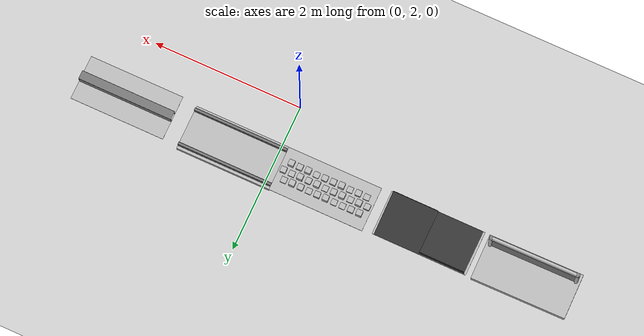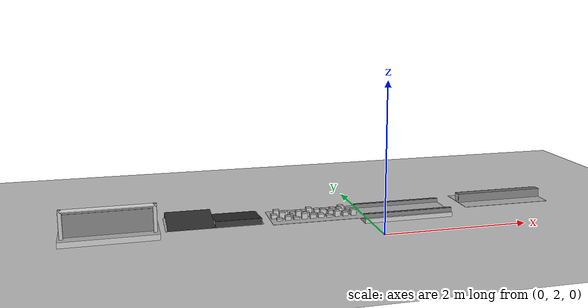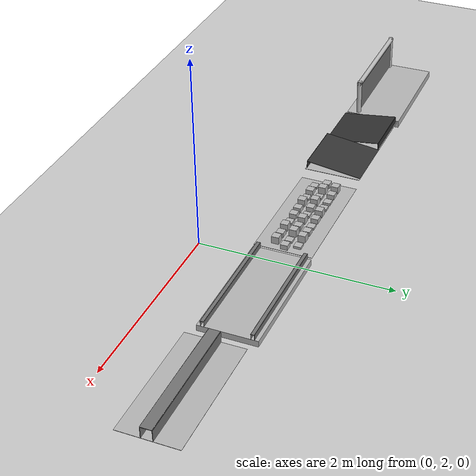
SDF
<sdf version="1.5">
 <world name="default">
  <model name="ground_plane">
   <static>1</static>
   <link name="link">
    <collision name="collision">
     <geometry><plane><normal>0 0 1</normal><size>100 100</size></plane></geometry>
     <surface><friction><ode><mu>100</mu><mu2>50</mu2></ode></friction></surface>
    </collision>
    <visual name="visual">
     <cast_shadows>0</cast_shadows>
     <geometry><plane><normal>0 0 1</normal><size>100 100</size></plane></geometry>
     <material>
      <script><uri>file://media/materials/scripts/gazebo.material</uri><name>Gazebo/Grey</name></script>
     </material>
    </visual>
   </link>
  </model>
  <model name="frc2016_rockwall">
   <static>1</static>
   <link name="link">
    <inertial>
     <mass>10</mass>
     <pose>0 0 0.08974 0 -0 0</pose>
     <inertia><ixx>0.327091</ixx><ixy>0</ixy><ixz>0</ixz><iyy>1.37417</iyy><iyz>0</iyz><izz>1.64109</izz></inertia>
    </inertial>
    <visual name="platform">
     <pose>0 0 0.06432 0 -0 0</pose>
     <geometry><box><size>1.27 0.5969 0.003175</size></box></geometry>
    </visual>
    <collision name="platform">
     <pose>0 0 0.06432 0 -0 0</pose>
     <geometry><box><size>1.27 0.5969 0.003175</size></box></geometry>
    </collision>
    <visual name="up1">
     <pose>0 0.05166 0.12537 0 -0 0</pose>
     <geometry><box><size>1.27 0.00462 0.11892</size></box></geometry>
     <material><ambient>0.46 0.46 0.46 1</ambient><diffuse>0.46 0.46 0.46 1</diffuse></material>
    </visual>
    <collision name="up1">
     <pose>0 0.05166 0.12537 0 -0 0</pose>
     <geometry><box><size>1.27 0.00462 0.11892</size></box></geometry>
    </collision>
    <visual name="up2">
     <pose>0 -0.05801 0.12537 0 -0 0</pose>
     <geometry><box><size>1.27 0.00462 0.11892</size></box></geometry>
     <material><ambient>0.46 0.46 0.46 1</ambient><diffuse>0.46 0.46 0.46 1</diffuse></material>
    </visual>
    <collision name="up2">
     <pose>0 -0.05801 0.12537 0 -0 0</pose>
     <geometry><box><size>1.27 0.00462 0.11892</size></box></geometry>
    </collision>
    <visual name="top">
     <pose>0 -0.00249 0.18252 0 -0 0</pose>
     <geometry><box><size>1.27 0.1143 0.00462</size></box></geometry>
     <material><ambient>0.46 0.46 0.46 1</ambient><diffuse>0.46 0.46 0.46 1</diffuse></material>
    </visual>
    <collision name="top">
     <pose>0 -0.00249 0.18252 0 -0 0</pose>
     <geometry><box><size>1.27 0.1143 0.00462</size></box></geometry>
    </collision>
   </link>
   <pose>2.00868 2.81309 0.054755 0 -0 0</pose>
  </model>
  <model name="frc2016_moat">
   <static>1</static>
   <link name="link">
    <inertial>
     <mass>10</mass>
     <pose>0 0 0.06738 0 -0 0</pose>
     <inertia><ixx>0.312195</ixx><ixy>0</ixy><ixz>0</ixz><iyy>1.35927</iyy><iyz>0</iyz><izz>1.64109</izz></inertia>
    </inertial>
    <visual name="platform">
     <pose>0 0 0.0381 0 -0 0</pose>
     <geometry><box><size>1.27 0.5969 0.0762</size></box></geometry>
    </visual>
    <collision name="platform">
     <pose>0 0 0.0381 0 -0 0</pose>
     <geometry><box><size>1.27 0.5969 0.0762</size></box></geometry>
    </collision>
    <visual name="tube1_side1">
     <pose>0 -0.25876 0.10301 0 -0 0</pose>
     <geometry><box><size>1.27 0.003175 0.0635</size></box></geometry>
     <material><ambient>0.46 0.46 0.46 1</ambient><diffuse>0.46 0.46 0.46 1</diffuse></material>
    </visual>
    <collision name="tube1_side1">
     <pose>0 -0.25876 0.10301 0 -0 0</pose>
     <geometry><box><size>1.27 0.003175 0.0635</size></box></geometry>
    </collision>
    <visual name="tube1_side2">
     <pose>0 -0.22384 0.10301 0 -0 0</pose>
     <geometry><box><size>1.27 0.003175 0.0635</size></box></geometry>
     <material><ambient>0.46 0.46 0.46 1</ambient><diffuse>0.46 0.46 0.46 1</diffuse></material>
    </visual>
    <collision name="tube1_side2">
     <pose>0 -0.22384 0.10301 0 -0 0</pose>
     <geometry><box><size>1.27 0.003175 0.0635</size></box></geometry>
    </collision>
    <visual name="tube1_top">
     <pose>0 -0.2413 0.13317 0 -0 0</pose>
     <geometry><box><size>1.27 0.0381 0.003175</size></box></geometry>
     <material><ambient>0.46 0.46 0.46 1</ambient><diffuse>0.46 0.46 0.46 1</diffuse></material>
    </visual>
    <collision name="tube1_top">
     <pose>0 -0.2413 0.13317 0 -0 0</pose>
     <geometry><box><size>1.27 0.0381 0.003175</size></box></geometry>
    </collision>
    <visual name="tube2_side1">
     <pose>0 0.22384 0.10301 0 -0 0</pose>
     <geometry><box><size>1.27 0.003175 0.0635</size></box></geometry>
     <material><ambient>0.46 0.46 0.46 1</ambient><diffuse>0.46 0.46 0.46 1</diffuse></material>
    </visual>
    <collision name="tube2_side1">
     <pose>0 0.22384 0.10301 0 -0 0</pose>
     <geometry><box><size>1.27 0.003175 0.0635</size></box></geometry>
    </collision>
    <visual name="tube2_side2">
     <pose>0 0.25876 0.10301 0 -0 0</pose>
     <geometry><box><size>1.27 0.003175 0.0635</size></box></geometry>
     <material><ambient>0.46 0.46 0.46 1</ambient><diffuse>0.46 0.46 0.46 1</diffuse></material>
    </visual>
    <collision name="tube2_side2">
     <pose>0 0.25876 0.10301 0 -0 0</pose>
     <geometry><box><size>1.27 0.003175 0.0635</size></box></geometry>
    </collision>
    <visual name="tube2_top">
     <pose>0 0.2413 0.13317 0 -0 0</pose>
     <geometry><box><size>1.27 0.0381 0.003175</size></box></geometry>
     <material><ambient>0.46 0.46 0.46 1</ambient><diffuse>0.46 0.46 0.46 1</diffuse></material>
    </visual>
    <collision name="tube2_top">
     <pose>0 0.2413 0.13317 0 -0 0</pose>
     <geometry><box><size>1.27 0.0381 0.003175</size></box></geometry>
    </collision>
   </link>
   <pose>0.544454 2.83217 -0.019486 0 -0 0</pose>
  </model>
  <model name="frc2016_roughterrain">
   <static>1</static>
   <link name="link">
    <visual name="platform">
     <pose>0 0 0.08269 0 -0 0</pose>
     <geometry><box><size>1.27 0.5969 0.003175</size></box></geometry>
    </visual>
    <collision name="platform">
     <pose>0 0 0.08269 0 -0 0</pose>
     <geometry><box><size>1.27 0.5969 0.003175</size></box></geometry>
    </collision>
    <visual name="row1_block1_sm">
     <pose>0.51435 0.1143 0.09698 0 -0 0</pose>
     <geometry><box><size>0.0762 0.0762 0.0254</size></box></geometry>
    </visual>
    <collision name="row1_block1_sm">
     <pose>0.51435 0.1143 0.09698 0 -0 0</pose>
     <geometry><box><size>0.0762 0.0762 0.0254</size></box></geometry>
    </collision>
    <visual name="row1_block2_lg">
     <pose>0.40005 0.1143 0.12238 0 -0 0</pose>
     <geometry><box><size>0.0762 0.0762 0.0762</size></box></geometry>
    </visual>
    <collision name="row1_block2_lg">
     <pose>0.40005 0.1143 0.12238 0 -0 0</pose>
     <geometry><box><size>0.0762 0.0762 0.0762</size></box></geometry>
    </collision>
    <visual name="row1_block3_md">
     <pose>0.28575 0.1143 0.10968 0 -0 0</pose>
     <geometry><box><size>0.0762 0.0762 0.0508</size></box></geometry>
    </visual>
    <collision name="row1_block3_md">
     <pose>0.28575 0.1143 0.10968 0 -0 0</pose>
     <geometry><box><size>0.0762 0.0762 0.0508</size></box></geometry>
    </collision>
    <visual name="row1_block4_sm">
     <pose>0.17145 0.1143 0.09698 0 -0 0</pose>
     <geometry><box><size>0.0762 0.0762 0.0254</size></box></geometry>
    </visual>
    <collision name="row1_block4_sm">
     <pose>0.17145 0.1143 0.09698 0 -0 0</pose>
     <geometry><box><size>0.0762 0.0762 0.0254</size></box></geometry>
    </collision>
    <visual name="row1_block5_md">
     <pose>0.05715 0.1143 0.10968 0 -0 0</pose>
     <geometry><box><size>0.0762 0.0762 0.0508</size></box></geometry>
    </visual>
    <collision name="row1_block5_md">
     <pose>0.05715 0.1143 0.10968 0 -0 0</pose>
     <geometry><box><size>0.0762 0.0762 0.0508</size></box></geometry>
    </collision>
    <visual name="row1_block6_lg">
     <pose>-0.05715 0.1143 0.12238 0 -0 0</pose>
     <geometry><box><size>0.0762 0.0762 0.0762</size></box></geometry>
    </visual>
    <collision name="row1_block6_lg">
     <pose>-0.05715 0.1143 0.12238 0 -0 0</pose>
     <geometry><box><size>0.0762 0.0762 0.0762</size></box></geometry>
    </collision>
    <visual name="row1_block7_sm">
     <pose>-0.17145 0.1143 0.09698 0 -0 0</pose>
     <geometry><box><size>0.0762 0.0762 0.0254</size></box></geometry>
    </visual>
    <collision name="row1_block7_sm">
     <pose>-0.17145 0.1143 0.09698 0 -0 0</pose>
     <geometry><box><size>0.0762 0.0762 0.0254</size></box></geometry>
    </collision>
    <visual name="row1_block8_sm">
     <pose>-0.28575 0.1143 0.09698 0 -0 0</pose>
     <geometry><box><size>0.0762 0.0762 0.0254</size></box></geometry>
    </visual>
    <collision name="row1_block8_sm">
     <pose>-0.28575 0.1143 0.09698 0 -0 0</pose>
     <geometry><box><size>0.0762 0.0762 0.0254</size></box></geometry>
    </collision>
    <visual name="row1_block9_md">
     <pose>-0.40005 0.1143 0.10968 0 -0 0</pose>
     <geometry><box><size>0.0762 0.0762 0.0508</size></box></geometry>
    </visual>
    <collision name="row1_block9_md">
     <pose>-0.40005 0.1143 0.10968 0 -0 0</pose>
     <geometry><box><size>0.0762 0.0762 0.0508</size></box></geometry>
    </collision>
    <visual name="row1_block10_lg">
     <pose>-0.51435 0.1143 0.12238 0 -0 0</pose>
     <geometry><box><size>0.0762 0.0762 0.0762</size></box></geometry>
    </visual>
    <collision name="row1_block10_lg">
     <pose>-0.51435 0.1143 0.12238 0 -0 0</pose>
     <geometry><box><size>0.0762 0.0762 0.0762</size></box></geometry>
    </collision>
    <visual name="row2_block1_md">
     <pose>0.5715 0 0.10968 0 -0 0</pose>
     <geometry><box><size>0.0762 0.0762 0.0508</size></box></geometry>
    </visual>
    <collision name="row2_block1_md">
     <pose>0.5715 0 0.10968 0 -0 0</pose>
     <geometry><box><size>0.0762 0.0762 0.0508</size></box></geometry>
    </collision>
    <visual name="row2_block2_sm">
     <pose>0.4572 0 0.09698 0 -0 0</pose>
     <geometry><box><size>0.0762 0.0762 0.0254</size></box></geometry>
    </visual>
    <collision name="row2_block2_sm">
     <pose>0.4572 0 0.09698 0 -0 0</pose>
     <geometry><box><size>0.0762 0.0762 0.0254</size></box></geometry>
    </collision>
    <visual name="row2_block3_lg">
     <pose>0.3429 0 0.12238 0 -0 0</pose>
     <geometry><box><size>0.0762 0.0762 0.0762</size></box></geometry>
    </visual>
    <collision name="row2_block3_lg">
     <pose>0.3429 0 0.12238 0 -0 0</pose>
     <geometry><box><size>0.0762 0.0762 0.0762</size></box></geometry>
    </collision>
    <visual name="row2_block4_md">
     <pose>0.2286 0 0.10968 0 -0 0</pose>
     <geometry><box><size>0.0762 0.0762 0.0508</size></box></geometry>
    </visual>
    <collision name="row2_block4_md">
     <pose>0.2286 0 0.10968 0 -0 0</pose>
     <geometry><box><size>0.0762 0.0762 0.0508</size></box></geometry>
    </collision>
    <visual name="row2_block5_lg">
     <pose>0.1143 0 0.12238 0 -0 0</pose>
     <geometry><box><size>0.0762 0.0762 0.0762</size></box></geometry>
    </visual>
    <collision name="row2_block5_lg">
     <pose>0.1143 0 0.12238 0 -0 0</pose>
     <geometry><box><size>0.0762 0.0762 0.0762</size></box></geometry>
    </collision>
    <visual name="row2_block6_sm">
     <pose>0 0 0.09698 0 -0 0</pose>
     <geometry><box><size>0.0762 0.0762 0.0254</size></box></geometry>
    </visual>
    <collision name="row2_block6_sm">
     <pose>0 0 0.09698 0 -0 0</pose>
     <geometry><box><size>0.0762 0.0762 0.0254</size></box></geometry>
    </collision>
    <visual name="row2_block7_md">
     <pose>-0.1143 0 0.10968 0 -0 0</pose>
     <geometry><box><size>0.0762 0.0762 0.0508</size></box></geometry>
    </visual>
    <collision name="row2_block7_md">
     <pose>-0.1143 0 0.10968 0 -0 0</pose>
     <geometry><box><size>0.0762 0.0762 0.0508</size></box></geometry>
    </collision>
    <visual name="row2_block8_lg">
     <pose>-0.2286 0 0.12238 0 -0 0</pose>
     <geometry><box><size>0.0762 0.0762 0.0762</size></box></geometry>
    </visual>
    <collision name="row2_block8_lg">
     <pose>-0.2286 0 0.12238 0 -0 0</pose>
     <geometry><box><size>0.0762 0.0762 0.0762</size></box></geometry>
    </collision>
    <visual name="row2_block9_sm">
     <pose>-0.3429 0 0.09698 0 -0 0</pose>
     <geometry><box><size>0.0762 0.0762 0.0254</size></box></geometry>
    </visual>
    <collision name="row2_block9_sm">
     <pose>-0.3429 0 0.09698 0 -0 0</pose>
     <geometry><box><size>0.0762 0.0762 0.0254</size></box></geometry>
    </collision>
    <visual name="row2_block10_lg">
     <pose>-0.4572 0 0.12238 0 -0 0</pose>
     <geometry><box><size>0.0762 0.0762 0.0762</size></box></geometry>
    </visual>
    <collision name="row2_block10_lg">
     <pose>-0.4572 0 0.12238 0 -0 0</pose>
     <geometry><box><size>0.0762 0.0762 0.0762</size></box></geometry>
    </collision>
    <visual name="row2_block11_md">
     <pose>-0.5715 0 0.10968 0 -0 0</pose>
     <geometry><box><size>0.0762 0.0762 0.0508</size></box></geometry>
    </visual>
    <collision name="row2_block11_md">
     <pose>-0.5715 0 0.10968 0 -0 0</pose>
     <geometry><box><size>0.0762 0.0762 0.0508</size></box></geometry>
    </collision>
    <visual name="row3_block1_lg">
     <pose>0.51435 -0.1143 0.12238 0 -0 0</pose>
     <geometry><box><size>0.0762 0.0762 0.0762</size></box></geometry>
    </visual>
    <collision name="row3_block1_lg">
     <pose>0.51435 -0.1143 0.12238 0 -0 0</pose>
     <geometry><box><size>0.0762 0.0762 0.0762</size></box></geometry>
    </collision>
    <visual name="row3_block2_md">
     <pose>0.40005 -0.1143 0.10968 0 -0 0</pose>
     <geometry><box><size>0.0762 0.0762 0.0508</size></box></geometry>
    </visual>
    <collision name="row3_block2_md">
     <pose>0.40005 -0.1143 0.10968 0 -0 0</pose>
     <geometry><box><size>0.0762 0.0762 0.0508</size></box></geometry>
    </collision>
    <visual name="row3_block3_lg">
     <pose>0.28575 -0.1143 0.12238 0 -0 0</pose>
     <geometry><box><size>0.0762 0.0762 0.0762</size></box></geometry>
    </visual>
    <collision name="row3_block3_lg">
     <pose>0.28575 -0.1143 0.12238 0 -0 0</pose>
     <geometry><box><size>0.0762 0.0762 0.0762</size></box></geometry>
    </collision>
    <visual name="row3_block4_sm">
     <pose>0.17145 -0.1143 0.09698 0 -0 0</pose>
     <geometry><box><size>0.0762 0.0762 0.0254</size></box></geometry>
    </visual>
    <collision name="row3_block4_sm">
     <pose>0.17145 -0.1143 0.09698 0 -0 0</pose>
     <geometry><box><size>0.0762 0.0762 0.0254</size></box></geometry>
    </collision>
    <visual name="row3_block5_md">
     <pose>0.05715 -0.1143 0.10968 0 -0 0</pose>
     <geometry><box><size>0.0762 0.0762 0.0508</size></box></geometry>
    </visual>
    <collision name="row3_block5_md">
     <pose>0.05715 -0.1143 0.10968 0 -0 0</pose>
     <geometry><box><size>0.0762 0.0762 0.0508</size></box></geometry>
    </collision>
    <visual name="row3_block6_md">
     <pose>-0.05715 -0.1143 0.10968 0 -0 0</pose>
     <geometry><box><size>0.0762 0.0762 0.0508</size></box></geometry>
    </visual>
    <collision name="row3_block6_md">
     <pose>-0.05715 -0.1143 0.10968 0 -0 0</pose>
     <geometry><box><size>0.0762 0.0762 0.0508</size></box></geometry>
    </collision>
    <visual name="row3_block7_lg">
     <pose>-0.17145 -0.1143 0.12238 0 -0 0</pose>
     <geometry><box><size>0.0762 0.0762 0.0762</size></box></geometry>
    </visual>
    <collision name="row3_block7_lg">
     <pose>-0.17145 -0.1143 0.12238 0 -0 0</pose>
     <geometry><box><size>0.0762 0.0762 0.0762</size></box></geometry>
    </collision>
    <visual name="row3_block8_sm">
     <pose>-0.28575 -0.1143 0.09698 0 -0 0</pose>
     <geometry><box><size>0.0762 0.0762 0.0254</size></box></geometry>
    </visual>
    <collision name="row3_block8_sm">
     <pose>-0.28575 -0.1143 0.09698 0 -0 0</pose>
     <geometry><box><size>0.0762 0.0762 0.0254</size></box></geometry>
    </collision>
    <visual name="row3_block9_md">
     <pose>-0.40005 -0.1143 0.10968 0 -0 0</pose>
     <geometry><box><size>0.0762 0.0762 0.0508</size></box></geometry>
    </visual>
    <collision name="row3_block9_md">
     <pose>-0.40005 -0.1143 0.10968 0 -0 0</pose>
     <geometry><box><size>0.0762 0.0762 0.0508</size></box></geometry>
    </collision>
    <visual name="row3_block10_sm">
     <pose>-0.51435 -0.1143 0.09698 0 -0 0</pose>
     <geometry><box><size>0.0762 0.0762 0.0254</size></box></geometry>
    </visual>
    <collision name="row3_block10_sm">
     <pose>-0.51435 -0.1143 0.09698 0 -0 0</pose>
     <geometry><box><size>0.0762 0.0762 0.0254</size></box></geometry>
    </collision>
   </link>
   <pose>-0.727044 2.83742 -0.008615 0 -0 0</pose>
  </model>
  <model name="frc2016_ramparts">
   <static>1</static>
   <link name="link">
    <visual name="platform">
     <pose>0 0 0.06967 0 -0 0</pose>
     <geometry><box><size>1.27 0.5969 0.003175</size></box></geometry>
    </visual>
    <collision name="platform">
     <pose>0 0 0.06967 0 -0 0</pose>
     <geometry><box><size>1.27 0.5969 0.003175</size></box></geometry>
    </collision>
    <visual name="ramp1">
     <pose>0.30472 0.00588 0.1109 -0.13 0 0</pose>
     <geometry><box><size>0.60957 0.588891 0.00462</size></box></geometry>
     <material><ambient>0.2 0.2 0.2 1</ambient><diffuse>0.2 0.2 0.2 1</diffuse></material>
    </visual>
    <collision name="ramp1">
     <pose>0.30472 0.00588 0.1109 -0.13 0 0</pose>
     <geometry><box><size>0.60957 0.588891 0.00462</size></box></geometry>
    </collision>
    <visual name="up1">
     <pose>0.30472 -0.28806 0.11072 0 -0 0</pose>
     <geometry><box><size>0.60957 0.00462 0.07872</size></box></geometry>
     <material><ambient>0.2 0.2 0.2 1</ambient><diffuse>0.2 0.2 0.2 1</diffuse></material>
    </visual>
    <collision name="up1">
     <pose>0.30472 -0.28806 0.11072 0 -0 0</pose>
     <geometry><box><size>0.60957 0.00462 0.07872</size></box></geometry>
    </collision>
    <visual name="ramp2">
     <pose>-0.30472 -0.00619 0.1109 0.13 -0 0</pose>
     <geometry><box><size>0.60957 0.588891 0.00462</size></box></geometry>
     <material><ambient>0.2 0.2 0.2 1</ambient><diffuse>0.2 0.2 0.2 1</diffuse></material>
    </visual>
    <collision name="ramp2">
     <pose>-0.30472 -0.00619 0.1109 0.13 -0 0</pose>
     <geometry><box><size>0.60957 0.588891 0.00462</size></box></geometry>
    </collision>
    <visual name="up2">
     <pose>-0.30472 0.28806 0.11072 0 -0 0</pose>
     <geometry><box><size>0.60957 0.00462 0.07872</size></box></geometry>
     <material><ambient>0.2 0.2 0.2 1</ambient><diffuse>0.2 0.2 0.2 1</diffuse></material>
    </visual>
    <collision name="up2">
     <pose>-0.30472 0.28806 0.11072 0 -0 0</pose>
     <geometry><box><size>0.60957 0.00462 0.07872</size></box></geometry>
    </collision>
   </link>
   <pose>-2.12565 2.82209 0.032078 0 -0 0</pose>
  </model>
  <model name="frc2016_lowbar_0_0">
   <link name="base">
    <inertial>
     <mass>50</mass>
     <inertia>
      <ixx>0.035543</ixx>
      <ixy>0</ixy>
      <ixz>0</ixz>
      <iyy>0.134412</iyy>
      <iyz>0</iyz>
      <izz>0.165376</izz>
     </inertia>
    </inertial>
    <visual name="platform">
     <pose>0 0 0.039065 0 -0 0</pose>
     <geometry><box><size>1.26 0.5996 0.07813</size></box></geometry>
    </visual>
    <collision name="platform">
     <pose>0 0 0.039065 0 -0 0</pose>
     <geometry><box><size>1.27 0.6096 0.07813</size></box></geometry>
    </collision>
    <visual name="right_column">
     <pose>-0.57845 -0.18464 0.26863 0 -0 0</pose>
     <geometry><cylinder><radius>0.0254</radius><length>0.381</length></cylinder></geometry>
    </visual>
    <collision name="right_column">
     <pose>-0.57845 -0.18464 0.26863 0 -0 0</pose>
     <geometry><cylinder><radius>0.0254</radius><length>0.381</length></cylinder></geometry>
    </collision>
    <visual name="left_column">
     <pose>0.57845 -0.18464 0.26863 0 -0 0</pose>
     <geometry><cylinder><radius>0.0254</radius><length>0.381</length></cylinder></geometry>
    </visual>
    <collision name="left_column">
     <pose>0.57845 -0.18464 0.26863 0 -0 0</pose>
     <geometry><cylinder><radius>0.0254</radius><length>0.381</length></cylinder></geometry>
    </collision>
    <visual name="horizontal">
     <pose>0 -0.18464 0.43556 0 1.5707 0</pose>
     <geometry><cylinder><radius>0.0254</radius><length>1.2018</length></cylinder></geometry>
    </visual>
    <collision name="horizontal">
     <pose>0 -0.18464 0.43556 0 1.5707 0</pose>
     <geometry><cylinder><radius>0.0254</radius><length>1.2018</length></cylinder></geometry>
    </collision>
   </link>
   <link name="wall">
    <pose>0 -0.1778 0.24323 0 -0 0</pose>
    <inertial>
     <mass>1</mass>
     <inertia>
      <ixx>0.00774528</ixx>
      <ixy>0</ixy>
      <ixz>0</ixz>
      <iyy>0.116613</iyy>
      <iyz>0</iyz>
      <izz>0.108874</izz>
     </inertia>
    </inertial>
    <visual name="visual">
     <geometry><box><size>1.1176 0.00635 0.3</size></box></geometry>
     <material><ambient>0.46 0.46 0.46 1</ambient><diffuse>0.46 0.46 0.46 1</diffuse></material>
    </visual>
    <collision name="collision"><geometry><box><size>1.143 0.00635 0.3</size></box></geometry></collision>
   </link>
   <joint name="bar_joint" type="revolute">
    <pose>0 0 0.36378 0 -0 0</pose>
    <parent>base</parent>
    <child>wall</child>
    <axis>
     <xyz>1 0 0</xyz>
     <limit><lower>-1.5707</lower><upper>1.5707</upper></limit>
     <use_parent_model_frame>0</use_parent_model_frame>
     <dynamics><spring_reference>0</spring_reference><spring_stiffness>0</spring_stiffness></dynamics>
    </axis>
   </joint>
   <pose>-3.45571 2.81213 -1.4e-05 -4.7e-05 -0 0.010612</pose>
  </model>
 </world>
</sdf>
